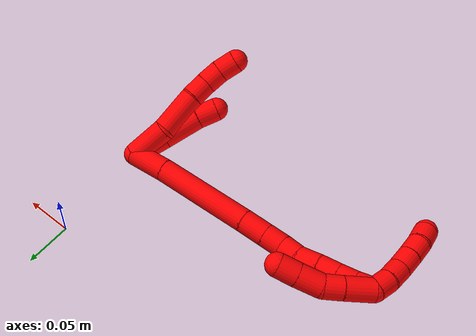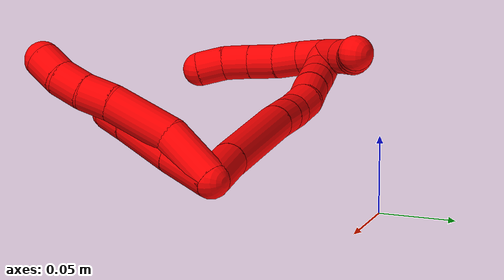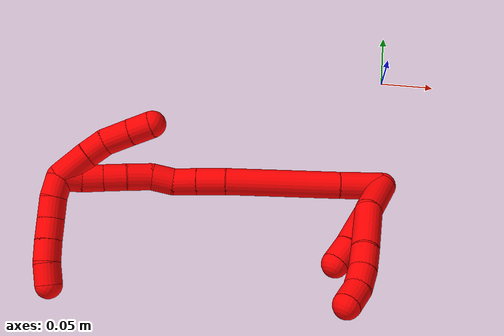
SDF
<sdf version="1.7">
 <world name="default">
  <model name="2">
   <static>0</static>
   <link name="2">
    <collision name="collision-cylinder-e_1_2_8">
     <pose>-8.3e-05 0.0117 0.017714 -0.58372 -0.003916 0.001176</pose>
     <geometry><cylinder><radius>0.0125</radius><length>0.042458</length></cylinder></geometry>
     <surface>
      <friction><ode><mu>1.16</mu><mu2>1.16</mu2><slip1>0</slip1><slip2>0</slip2></ode></friction>
      <contact><ode><kp>1e+06</kp><kd>1</kd><max_vel>0</max_vel><min_depth>0.001</min_depth></ode></contact>
     </surface>
    </collision>
    <visual name="visual-cylinder-e_1_2_8">
     <pose>-8.3e-05 0.0117 0.017714 -0.58372 -0.003916 0.001176</pose>
     <geometry><cylinder><radius>0.0125</radius><length>0.042458</length></cylinder></geometry>
     <material><ambient>1 0 0 1</ambient></material>
    </visual>
    <collision name="collision-cylinder-e_2_8_9">
     <pose>0.006099 0.032173 0.055275 -0.416208 0.281089 -0.059731</pose>
     <geometry><cylinder><radius>0.0125</radius><length>0.045172</length></cylinder></geometry>
     <surface>
      <friction><ode><mu>1.16</mu><mu2>1.16</mu2><slip1>0</slip1><slip2>0</slip2></ode></friction>
      <contact><ode><kp>1e+06</kp><kd>1</kd><max_vel>0</max_vel><min_depth>0.001</min_depth></ode></contact>
     </surface>
    </collision>
    <visual name="visual-cylinder-e_2_8_9">
     <pose>0.006099 0.032173 0.055275 -0.416208 0.281089 -0.059731</pose>
     <geometry><cylinder><radius>0.0125</radius><length>0.045172</length></cylinder></geometry>
     <material><ambient>1 0 0 1</ambient></material>
    </visual>
    <collision name="collision-cylinder-e_3_9_10">
     <pose>0.015244 0.043643 0.085024 -0.265947 0.273539 -0.036815</pose>
     <geometry><cylinder><radius>0.0125</radius><length>0.02132</length></cylinder></geometry>
     <surface>
      <friction><ode><mu>1.16</mu><mu2>1.16</mu2><slip1>0</slip1><slip2>0</slip2></ode></friction>
      <contact><ode><kp>1e+06</kp><kd>1</kd><max_vel>0</max_vel><min_depth>0.001</min_depth></ode></contact>
     </surface>
    </collision>
    <visual name="visual-cylinder-e_3_9_10">
     <pose>0.015244 0.043643 0.085024 -0.265947 0.273539 -0.036815</pose>
     <geometry><cylinder><radius>0.0125</radius><length>0.02132</length></cylinder></geometry>
     <material><ambient>1 0 0 1</ambient></material>
    </visual>
    <collision name="collision-cylinder-e_4_10_11">
     <pose>0.019493 0.049963 0.104359 -0.36669 0.134668 -0.025008</pose>
     <geometry><cylinder><radius>0.0125</radius><length>0.020392</length></cylinder></geometry>
     <surface>
      <friction><ode><mu>1.16</mu><mu2>1.16</mu2><slip1>0</slip1><slip2>0</slip2></ode></friction>
      <contact><ode><kp>1e+06</kp><kd>1</kd><max_vel>0</max_vel><min_depth>0.001</min_depth></ode></contact>
     </surface>
    </collision>
    <visual name="visual-cylinder-e_4_10_11">
     <pose>0.019493 0.049963 0.104359 -0.36669 0.134668 -0.025008</pose>
     <geometry><cylinder><radius>0.0125</radius><length>0.020392</length></cylinder></geometry>
     <material><ambient>1 0 0 1</ambient></material>
    </visual>
    <collision name="collision-cylinder-e_5_11_6">
     <pose>0.019875 0.058198 0.12298 -0.465196 -0.095683 0.022682</pose>
     <geometry><cylinder><radius>0.0125</radius><length>0.020658</length></cylinder></geometry>
     <surface>
      <friction><ode><mu>1.16</mu><mu2>1.16</mu2><slip1>0</slip1><slip2>0</slip2></ode></friction>
      <contact><ode><kp>1e+06</kp><kd>1</kd><max_vel>0</max_vel><min_depth>0.001</min_depth></ode></contact>
     </surface>
    </collision>
    <visual name="visual-cylinder-e_5_11_6">
     <pose>0.019875 0.058198 0.12298 -0.465196 -0.095683 0.022682</pose>
     <geometry><cylinder><radius>0.0125</radius><length>0.020658</length></cylinder></geometry>
     <material><ambient>1 0 0 1</ambient></material>
    </visual>
    <collision name="collision-cylinder-e_1_2_12">
     <pose>-0.000697 0.005271 0.017167 -0.297934 -0.038781 0.005821</pose>
     <geometry><cylinder><radius>0.0125</radius><length>0.035943</length></cylinder></geometry>
     <surface>
      <friction><ode><mu>1.16</mu><mu2>1.16</mu2><slip1>0</slip1><slip2>0</slip2></ode></friction>
      <contact><ode><kp>1e+06</kp><kd>1</kd><max_vel>0</max_vel><min_depth>0.001</min_depth></ode></contact>
     </surface>
    </collision>
    <visual name="visual-cylinder-e_1_2_12">
     <pose>-0.000697 0.005271 0.017167 -0.297934 -0.038781 0.005821</pose>
     <geometry><cylinder><radius>0.0125</radius><length>0.035943</length></cylinder></geometry>
     <material><ambient>1 0 0 1</ambient></material>
    </visual>
    <collision name="collision-cylinder-e_2_12_13">
     <pose>-0.002527 0.017598 0.054017 -0.344181 -0.054176 0.009419</pose>
     <geometry><cylinder><radius>0.0125</radius><length>0.041882</length></cylinder></geometry>
     <surface>
      <friction><ode><mu>1.16</mu><mu2>1.16</mu2><slip1>0</slip1><slip2>0</slip2></ode></friction>
      <contact><ode><kp>1e+06</kp><kd>1</kd><max_vel>0</max_vel><min_depth>0.001</min_depth></ode></contact>
     </surface>
    </collision>
    <visual name="visual-cylinder-e_2_12_13">
     <pose>-0.002527 0.017598 0.054017 -0.344181 -0.054176 0.009419</pose>
     <geometry><cylinder><radius>0.0125</radius><length>0.041882</length></cylinder></geometry>
     <material><ambient>1 0 0 1</ambient></material>
    </visual>
    <collision name="collision-cylinder-e_3_13_5">
     <pose>-0.005388 0.027463 0.084287 -0.259398 -0.156338 0.020432</pose>
     <geometry><cylinder><radius>0.0125</radius><length>0.022176</length></cylinder></geometry>
     <surface>
      <friction><ode><mu>1.16</mu><mu2>1.16</mu2><slip1>0</slip1><slip2>0</slip2></ode></friction>
      <contact><ode><kp>1e+06</kp><kd>1</kd><max_vel>0</max_vel><min_depth>0.001</min_depth></ode></contact>
     </surface>
    </collision>
    <visual name="visual-cylinder-e_3_13_5">
     <pose>-0.005388 0.027463 0.084287 -0.259398 -0.156338 0.020432</pose>
     <geometry><cylinder><radius>0.0125</radius><length>0.022176</length></cylinder></geometry>
     <material><ambient>1 0 0 1</ambient></material>
    </visual>
    <collision name="collision-cylinder-e_1_2_14">
     <pose>-0.018083 0.002274 0.008449 -0.262916 -1.12016 0.165442</pose>
     <geometry><cylinder><radius>0.0125</radius><length>0.040177</length></cylinder></geometry>
     <surface>
      <friction><ode><mu>1.16</mu><mu2>1.16</mu2><slip1>0</slip1><slip2>0</slip2></ode></friction>
      <contact><ode><kp>1e+06</kp><kd>1</kd><max_vel>0</max_vel><min_depth>0.001</min_depth></ode></contact>
     </surface>
    </collision>
    <visual name="visual-cylinder-e_1_2_14">
     <pose>-0.018083 0.002274 0.008449 -0.262916 -1.12016 0.165442</pose>
     <geometry><cylinder><radius>0.0125</radius><length>0.040177</length></cylinder></geometry>
     <material><ambient>1 0 0 1</ambient></material>
    </visual>
    <collision name="collision-cylinder-e_2_14_15">
     <pose>-0.084476 0.008248 0.037621 -0.176706 -1.15985 0.115926</pose>
     <geometry><cylinder><radius>0.0125</radius><length>0.105394</length></cylinder></geometry>
     <surface>
      <friction><ode><mu>1.16</mu><mu2>1.16</mu2><slip1>0</slip1><slip2>0</slip2></ode></friction>
      <contact><ode><kp>1e+06</kp><kd>1</kd><max_vel>0</max_vel><min_depth>0.001</min_depth></ode></contact>
     </surface>
    </collision>
    <visual name="visual-cylinder-e_2_14_15">
     <pose>-0.084476 0.008248 0.037621 -0.176706 -1.15985 0.115926</pose>
     <geometry><cylinder><radius>0.0125</radius><length>0.105394</length></cylinder></geometry>
     <material><ambient>1 0 0 1</ambient></material>
    </visual>
    <collision name="collision-cylinder-e_3_15_16">
     <pose>-0.145138 0.012047 0.063849 -0.017745 -1.1515 0.011518</pose>
     <geometry><cylinder><radius>0.0125</radius><length>0.027048</length></cylinder></geometry>
     <surface>
      <friction><ode><mu>1.16</mu><mu2>1.16</mu2><slip1>0</slip1><slip2>0</slip2></ode></friction>
      <contact><ode><kp>1e+06</kp><kd>1</kd><max_vel>0</max_vel><min_depth>0.001</min_depth></ode></contact>
     </surface>
    </collision>
    <visual name="visual-cylinder-e_3_15_16">
     <pose>-0.145138 0.012047 0.063849 -0.017745 -1.1515 0.011518</pose>
     <geometry><cylinder><radius>0.0125</radius><length>0.027048</length></cylinder></geometry>
     <material><ambient>1 0 0 1</ambient></material>
    </visual>
    <collision name="collision-cylinder-e_4_16_17">
     <pose>-0.167402 0.01212 0.073854 0.005518 -1.14465 -0.003555</pose>
     <geometry><cylinder><radius>0.0125</radius><length>0.021771</length></cylinder></geometry>
     <surface>
      <friction><ode><mu>1.16</mu><mu2>1.16</mu2><slip1>0</slip1><slip2>0</slip2></ode></friction>
      <contact><ode><kp>1e+06</kp><kd>1</kd><max_vel>0</max_vel><min_depth>0.001</min_depth></ode></contact>
     </surface>
    </collision>
    <visual name="visual-cylinder-e_4_16_17">
     <pose>-0.167402 0.01212 0.073854 0.005518 -1.14465 -0.003555</pose>
     <geometry><cylinder><radius>0.0125</radius><length>0.021771</length></cylinder></geometry>
     <material><ambient>1 0 0 1</ambient></material>
    </visual>
    <collision name="collision-cylinder-e_5_17_18">
     <pose>-0.187278 0.01442 0.080906 -0.738722 -1.23723 0.537782</pose>
     <geometry><cylinder><radius>0.0125</radius><length>0.02109</length></cylinder></geometry>
     <surface>
      <friction><ode><mu>1.16</mu><mu2>1.16</mu2><slip1>0</slip1><slip2>0</slip2></ode></friction>
      <contact><ode><kp>1e+06</kp><kd>1</kd><max_vel>0</max_vel><min_depth>0.001</min_depth></ode></contact>
     </surface>
    </collision>
    <visual name="visual-cylinder-e_5_17_18">
     <pose>-0.187278 0.01442 0.080906 -0.738722 -1.23723 0.537782</pose>
     <geometry><cylinder><radius>0.0125</radius><length>0.02109</length></cylinder></geometry>
     <material><ambient>1 0 0 1</ambient></material>
    </visual>
    <collision name="collision-cylinder-e_6_18_19">
     <pose>-0.206999 0.019237 0.089056 -0.418979 -1.01008 0.234013</pose>
     <geometry><cylinder><radius>0.0125</radius><length>0.023043</length></cylinder></geometry>
     <surface>
      <friction><ode><mu>1.16</mu><mu2>1.16</mu2><slip1>0</slip1><slip2>0</slip2></ode></friction>
      <contact><ode><kp>1e+06</kp><kd>1</kd><max_vel>0</max_vel><min_depth>0.001</min_depth></ode></contact>
     </surface>
    </collision>
    <visual name="visual-cylinder-e_6_18_19">
     <pose>-0.206999 0.019237 0.089056 -0.418979 -1.01008 0.234013</pose>
     <geometry><cylinder><radius>0.0125</radius><length>0.023043</length></cylinder></geometry>
     <material><ambient>1 0 0 1</ambient></material>
    </visual>
    <collision name="collision-cylinder-e_7_19_20">
     <pose>-0.22593 0.023225 0.099707 -0.287645 -1.04933 0.167247</pose>
     <geometry><cylinder><radius>0.0125</radius><length>0.021161</length></cylinder></geometry>
     <surface>
      <friction><ode><mu>1.16</mu><mu2>1.16</mu2><slip1>0</slip1><slip2>0</slip2></ode></friction>
      <contact><ode><kp>1e+06</kp><kd>1</kd><max_vel>0</max_vel><min_depth>0.001</min_depth></ode></contact>
     </surface>
    </collision>
    <visual name="visual-cylinder-e_7_19_20">
     <pose>-0.22593 0.023225 0.099707 -0.287645 -1.04933 0.167247</pose>
     <geometry><cylinder><radius>0.0125</radius><length>0.021161</length></cylinder></geometry>
     <material><ambient>1 0 0 1</ambient></material>
    </visual>
    <collision name="collision-cylinder-e_8_20_21">
     <pose>-0.243767 0.026364 0.109743 -0.318707 -1.02623 0.18062</pose>
     <geometry><cylinder><radius>0.0125</radius><length>0.020256</length></cylinder></geometry>
     <surface>
      <friction><ode><mu>1.16</mu><mu2>1.16</mu2><slip1>0</slip1><slip2>0</slip2></ode></friction>
      <contact><ode><kp>1e+06</kp><kd>1</kd><max_vel>0</max_vel><min_depth>0.001</min_depth></ode></contact>
     </surface>
    </collision>
    <visual name="visual-cylinder-e_8_20_21">
     <pose>-0.243767 0.026364 0.109743 -0.318707 -1.02623 0.18062</pose>
     <geometry><cylinder><radius>0.0125</radius><length>0.020256</length></cylinder></geometry>
     <material><ambient>1 0 0 1</ambient></material>
    </visual>
    <collision name="collision-cylinder-e_9_21_1">
     <pose>-0.260692 0.031867 0.118905 -0.745646 -0.967861 0.405503</pose>
     <geometry><cylinder><radius>0.0125</radius><length>0.020061</length></cylinder></geometry>
     <surface>
      <friction><ode><mu>1.16</mu><mu2>1.16</mu2><slip1>0</slip1><slip2>0</slip2></ode></friction>
      <contact><ode><kp>1e+06</kp><kd>1</kd><max_vel>0</max_vel><min_depth>0.001</min_depth></ode></contact>
     </surface>
    </collision>
    <visual name="visual-cylinder-e_9_21_1">
     <pose>-0.260692 0.031867 0.118905 -0.745646 -0.967861 0.405503</pose>
     <geometry><cylinder><radius>0.0125</radius><length>0.020061</length></cylinder></geometry>
     <material><ambient>1 0 0 1</ambient></material>
    </visual>
    <collision name="collision-cylinder-e_1_1_22">
     <pose>-0.261566 0.038276 0.109091 -2.96132 0.479092 -2.43272</pose>
     <geometry><cylinder><radius>0.0125</radius><length>0.032053</length></cylinder></geometry>
     <surface>
      <friction><ode><mu>1.16</mu><mu2>1.16</mu2><slip1>0</slip1><slip2>0</slip2></ode></friction>
      <contact><ode><kp>1e+06</kp><kd>1</kd><max_vel>0</max_vel><min_depth>0.001</min_depth></ode></contact>
     </surface>
    </collision>
    <visual name="visual-cylinder-e_1_1_22">
     <pose>-0.261566 0.038276 0.109091 -2.96132 0.479092 -2.43272</pose>
     <geometry><cylinder><radius>0.0125</radius><length>0.032053</length></cylinder></geometry>
     <material><ambient>1 0 0 1</ambient></material>
    </visual>
    <collision name="collision-cylinder-e_2_22_23">
     <pose>-0.249025 0.042019 0.086501 -3.00373 0.535728 -2.64872</pose>
     <geometry><cylinder><radius>0.0125</radius><length>0.02019</length></cylinder></geometry>
     <surface>
      <friction><ode><mu>1.16</mu><mu2>1.16</mu2><slip1>0</slip1><slip2>0</slip2></ode></friction>
      <contact><ode><kp>1e+06</kp><kd>1</kd><max_vel>0</max_vel><min_depth>0.001</min_depth></ode></contact>
     </surface>
    </collision>
    <visual name="visual-cylinder-e_2_22_23">
     <pose>-0.249025 0.042019 0.086501 -3.00373 0.535728 -2.64872</pose>
     <geometry><cylinder><radius>0.0125</radius><length>0.02019</length></cylinder></geometry>
     <material><ambient>1 0 0 1</ambient></material>
    </visual>
    <collision name="collision-cylinder-e_3_23_24">
     <pose>-0.233997 0.046036 0.069467 -2.81859 0.837473 -2.43977</pose>
     <geometry><cylinder><radius>0.0125</radius><length>0.026582</length></cylinder></geometry>
     <surface>
      <friction><ode><mu>1.16</mu><mu2>1.16</mu2><slip1>0</slip1><slip2>0</slip2></ode></friction>
      <contact><ode><kp>1e+06</kp><kd>1</kd><max_vel>0</max_vel><min_depth>0.001</min_depth></ode></contact>
     </surface>
    </collision>
    <visual name="visual-cylinder-e_3_23_24">
     <pose>-0.233997 0.046036 0.069467 -2.81859 0.837473 -2.43977</pose>
     <geometry><cylinder><radius>0.0125</radius><length>0.026582</length></cylinder></geometry>
     <material><ambient>1 0 0 1</ambient></material>
    </visual>
    <collision name="collision-cylinder-e_4_24_4">
     <pose>-0.216116 0.051424 0.054595 -2.76234 0.857513 -2.34655</pose>
     <geometry><cylinder><radius>0.0125</radius><length>0.021175</length></cylinder></geometry>
     <surface>
      <friction><ode><mu>1.16</mu><mu2>1.16</mu2><slip1>0</slip1><slip2>0</slip2></ode></friction>
      <contact><ode><kp>1e+06</kp><kd>1</kd><max_vel>0</max_vel><min_depth>0.001</min_depth></ode></contact>
     </surface>
    </collision>
    <visual name="visual-cylinder-e_4_24_4">
     <pose>-0.216116 0.051424 0.054595 -2.76234 0.857513 -2.34655</pose>
     <geometry><cylinder><radius>0.0125</radius><length>0.021175</length></cylinder></geometry>
     <material><ambient>1 0 0 1</ambient></material>
    </visual>
    <collision name="collision-cylinder-e_1_1_25">
     <pose>-0.267363 0.034024 0.132808 0.173242 0.15979 0.013905</pose>
     <geometry><cylinder><radius>0.0125</radius><length>0.02</length></cylinder></geometry>
     <surface>
      <friction><ode><mu>1.16</mu><mu2>1.16</mu2><slip1>0</slip1><slip2>0</slip2></ode></friction>
      <contact><ode><kp>1e+06</kp><kd>1</kd><max_vel>0</max_vel><min_depth>0.001</min_depth></ode></contact>
     </surface>
    </collision>
    <visual name="visual-cylinder-e_1_1_25">
     <pose>-0.267363 0.034024 0.132808 0.173242 0.15979 0.013905</pose>
     <geometry><cylinder><radius>0.0125</radius><length>0.02</length></cylinder></geometry>
     <material><ambient>1 0 0 1</ambient></material>
    </visual>
    <collision name="collision-cylinder-e_2_25_26">
     <pose>-0.262542 0.030204 0.151757 0.225797 0.328839 0.037619</pose>
     <geometry><cylinder><radius>0.0125</radius><length>0.02</length></cylinder></geometry>
     <surface>
      <friction><ode><mu>1.16</mu><mu2>1.16</mu2><slip1>0</slip1><slip2>0</slip2></ode></friction>
      <contact><ode><kp>1e+06</kp><kd>1</kd><max_vel>0</max_vel><min_depth>0.001</min_depth></ode></contact>
     </surface>
    </collision>
    <visual name="visual-cylinder-e_2_25_26">
     <pose>-0.262542 0.030204 0.151757 0.225797 0.328839 0.037619</pose>
     <geometry><cylinder><radius>0.0125</radius><length>0.02</length></cylinder></geometry>
     <material><ambient>1 0 0 1</ambient></material>
    </visual>
    <collision name="collision-cylinder-e_3_26_27">
     <pose>-0.255657 0.027195 0.170246 0.095762 0.37418 0.018142</pose>
     <geometry><cylinder><radius>0.0125</radius><length>0.02</length></cylinder></geometry>
     <surface>
      <friction><ode><mu>1.16</mu><mu2>1.16</mu2><slip1>0</slip1><slip2>0</slip2></ode></friction>
      <contact><ode><kp>1e+06</kp><kd>1</kd><max_vel>0</max_vel><min_depth>0.001</min_depth></ode></contact>
     </surface>
    </collision>
    <visual name="visual-cylinder-e_3_26_27">
     <pose>-0.255657 0.027195 0.170246 0.095762 0.37418 0.018142</pose>
     <geometry><cylinder><radius>0.0125</radius><length>0.02</length></cylinder></geometry>
     <material><ambient>1 0 0 1</ambient></material>
    </visual>
    <collision name="collision-cylinder-e_4_27_28">
     <pose>-0.248009 0.025129 0.188604 0.128636 0.410819 0.026837</pose>
     <geometry><cylinder><radius>0.0125</radius><length>0.02</length></cylinder></geometry>
     <surface>
      <friction><ode><mu>1.16</mu><mu2>1.16</mu2><slip1>0</slip1><slip2>0</slip2></ode></friction>
      <contact><ode><kp>1e+06</kp><kd>1</kd><max_vel>0</max_vel><min_depth>0.001</min_depth></ode></contact>
     </surface>
    </collision>
    <visual name="visual-cylinder-e_4_27_28">
     <pose>-0.248009 0.025129 0.188604 0.128636 0.410819 0.026837</pose>
     <geometry><cylinder><radius>0.0125</radius><length>0.02</length></cylinder></geometry>
     <material><ambient>1 0 0 1</ambient></material>
    </visual>
    <collision name="collision-cylinder-e_5_28_3">
     <pose>-0.239164 0.021133 0.205974 0.328261 0.506441 0.085664</pose>
     <geometry><cylinder><radius>0.0125</radius><length>0.02</length></cylinder></geometry>
     <surface>
      <friction><ode><mu>1.16</mu><mu2>1.16</mu2><slip1>0</slip1><slip2>0</slip2></ode></friction>
      <contact><ode><kp>1e+06</kp><kd>1</kd><max_vel>0</max_vel><min_depth>0.001</min_depth></ode></contact>
     </surface>
    </collision>
    <visual name="visual-cylinder-e_5_28_3">
     <pose>-0.239164 0.021133 0.205974 0.328261 0.506441 0.085664</pose>
     <geometry><cylinder><radius>0.0125</radius><length>0.02</length></cylinder></geometry>
     <material><ambient>1 0 0 1</ambient></material>
    </visual>
    <collision name="collision-sphere-3">
     <pose>-0.234314 0.018314 0.214252 0 -0 0</pose>
     <geometry><sphere><radius>0.0125</radius></sphere></geometry>
     <surface>
      <friction><ode><mu>1.16</mu><mu2>1.16</mu2><slip1>0</slip1><slip2>0</slip2></ode></friction>
      <contact><ode><kp>1e+06</kp><kd>1</kd><max_vel>0</max_vel><min_depth>0.001</min_depth></ode></contact>
     </surface>
    </collision>
    <visual name="visual-sphere-3">
     <pose>-0.234314 0.018314 0.214252 0 -0 0</pose>
     <geometry><sphere><radius>0.0125</radius></sphere></geometry>
     <material><ambient>1 0 0 1</ambient></material>
    </visual>
    <collision name="collision-sphere-28">
     <pose>-0.244015 0.023953 0.197696 0 -0 0</pose>
     <geometry><sphere><radius>0.0125</radius></sphere></geometry>
     <surface>
      <friction><ode><mu>1.16</mu><mu2>1.16</mu2><slip1>0</slip1><slip2>0</slip2></ode></friction>
      <contact><ode><kp>1e+06</kp><kd>1</kd><max_vel>0</max_vel><min_depth>0.001</min_depth></ode></contact>
     </surface>
    </collision>
    <visual name="visual-sphere-28">
     <pose>-0.244015 0.023953 0.197696 0 -0 0</pose>
     <geometry><sphere><radius>0.0125</radius></sphere></geometry>
     <material><ambient>1 0 0 1</ambient></material>
    </visual>
    <collision name="collision-sphere-27">
     <pose>-0.252002 0.026305 0.179512 0 -0 0</pose>
     <geometry><sphere><radius>0.0125</radius></sphere></geometry>
     <surface>
      <friction><ode><mu>1.16</mu><mu2>1.16</mu2><slip1>0</slip1><slip2>0</slip2></ode></friction>
      <contact><ode><kp>1e+06</kp><kd>1</kd><max_vel>0</max_vel><min_depth>0.001</min_depth></ode></contact>
     </surface>
    </collision>
    <visual name="visual-sphere-27">
     <pose>-0.252002 0.026305 0.179512 0 -0 0</pose>
     <geometry><sphere><radius>0.0125</radius></sphere></geometry>
     <material><ambient>1 0 0 1</ambient></material>
    </visual>
    <collision name="collision-sphere-26">
     <pose>-0.259313 0.028085 0.160981 0 -0 0</pose>
     <geometry><sphere><radius>0.0125</radius></sphere></geometry>
     <surface>
      <friction><ode><mu>1.16</mu><mu2>1.16</mu2><slip1>0</slip1><slip2>0</slip2></ode></friction>
      <contact><ode><kp>1e+06</kp><kd>1</kd><max_vel>0</max_vel><min_depth>0.001</min_depth></ode></contact>
     </surface>
    </collision>
    <visual name="visual-sphere-26">
     <pose>-0.259313 0.028085 0.160981 0 -0 0</pose>
     <geometry><sphere><radius>0.0125</radius></sphere></geometry>
     <material><ambient>1 0 0 1</ambient></material>
    </visual>
    <collision name="collision-sphere-25">
     <pose>-0.265771 0.032322 0.142533 0 -0 0</pose>
     <geometry><sphere><radius>0.0125</radius></sphere></geometry>
     <surface>
      <friction><ode><mu>1.16</mu><mu2>1.16</mu2><slip1>0</slip1><slip2>0</slip2></ode></friction>
      <contact><ode><kp>1e+06</kp><kd>1</kd><max_vel>0</max_vel><min_depth>0.001</min_depth></ode></contact>
     </surface>
    </collision>
    <visual name="visual-sphere-25">
     <pose>-0.265771 0.032322 0.142533 0 -0 0</pose>
     <geometry><sphere><radius>0.0125</radius></sphere></geometry>
     <material><ambient>1 0 0 1</ambient></material>
    </visual>
    <collision name="collision-sphere-4">
     <pose>-0.20811 0.053989 0.04816 0 -0 0</pose>
     <geometry><sphere><radius>0.0125</radius></sphere></geometry>
     <surface>
      <friction><ode><mu>1.16</mu><mu2>1.16</mu2><slip1>0</slip1><slip2>0</slip2></ode></friction>
      <contact><ode><kp>1e+06</kp><kd>1</kd><max_vel>0</max_vel><min_depth>0.001</min_depth></ode></contact>
     </surface>
    </collision>
    <visual name="visual-sphere-4">
     <pose>-0.20811 0.053989 0.04816 0 -0 0</pose>
     <geometry><sphere><radius>0.0125</radius></sphere></geometry>
     <material><ambient>1 0 0 1</ambient></material>
    </visual>
    <collision name="collision-sphere-24">
     <pose>-0.224122 0.04886 0.061031 0 -0 0</pose>
     <geometry><sphere><radius>0.0125</radius></sphere></geometry>
     <surface>
      <friction><ode><mu>1.16</mu><mu2>1.16</mu2><slip1>0</slip1><slip2>0</slip2></ode></friction>
      <contact><ode><kp>1e+06</kp><kd>1</kd><max_vel>0</max_vel><min_depth>0.001</min_depth></ode></contact>
     </surface>
    </collision>
    <visual name="visual-sphere-24">
     <pose>-0.224122 0.04886 0.061031 0 -0 0</pose>
     <geometry><sphere><radius>0.0125</radius></sphere></geometry>
     <material><ambient>1 0 0 1</ambient></material>
    </visual>
    <collision name="collision-sphere-23">
     <pose>-0.243872 0.043212 0.077903 0 -0 0</pose>
     <geometry><sphere><radius>0.0125</radius></sphere></geometry>
     <surface>
      <friction><ode><mu>1.16</mu><mu2>1.16</mu2><slip1>0</slip1><slip2>0</slip2></ode></friction>
      <contact><ode><kp>1e+06</kp><kd>1</kd><max_vel>0</max_vel><min_depth>0.001</min_depth></ode></contact>
     </surface>
    </collision>
    <visual name="visual-sphere-23">
     <pose>-0.243872 0.043212 0.077903 0 -0 0</pose>
     <geometry><sphere><radius>0.0125</radius></sphere></geometry>
     <material><ambient>1 0 0 1</ambient></material>
    </visual>
    <collision name="collision-sphere-22">
     <pose>-0.254178 0.040826 0.0951 0 -0 0</pose>
     <geometry><sphere><radius>0.0125</radius></sphere></geometry>
     <surface>
      <friction><ode><mu>1.16</mu><mu2>1.16</mu2><slip1>0</slip1><slip2>0</slip2></ode></friction>
      <contact><ode><kp>1e+06</kp><kd>1</kd><max_vel>0</max_vel><min_depth>0.001</min_depth></ode></contact>
     </surface>
    </collision>
    <visual name="visual-sphere-22">
     <pose>-0.254178 0.040826 0.0951 0 -0 0</pose>
     <geometry><sphere><radius>0.0125</radius></sphere></geometry>
     <material><ambient>1 0 0 1</ambient></material>
    </visual>
    <collision name="collision-sphere-1">
     <pose>-0.268954 0.035726 0.123083 0 -0 0</pose>
     <geometry><sphere><radius>0.0125</radius></sphere></geometry>
     <surface>
      <friction><ode><mu>1.16</mu><mu2>1.16</mu2><slip1>0</slip1><slip2>0</slip2></ode></friction>
      <contact><ode><kp>1e+06</kp><kd>1</kd><max_vel>0</max_vel><min_depth>0.001</min_depth></ode></contact>
     </surface>
    </collision>
    <visual name="visual-sphere-1">
     <pose>-0.268954 0.035726 0.123083 0 -0 0</pose>
     <geometry><sphere><radius>0.0125</radius></sphere></geometry>
     <material><ambient>1 0 0 1</ambient></material>
    </visual>
    <collision name="collision-sphere-21">
     <pose>-0.25243 0.028008 0.114726 0 -0 0</pose>
     <geometry><sphere><radius>0.0125</radius></sphere></geometry>
     <surface>
      <friction><ode><mu>1.16</mu><mu2>1.16</mu2><slip1>0</slip1><slip2>0</slip2></ode></friction>
      <contact><ode><kp>1e+06</kp><kd>1</kd><max_vel>0</max_vel><min_depth>0.001</min_depth></ode></contact>
     </surface>
    </collision>
    <visual name="visual-sphere-21">
     <pose>-0.25243 0.028008 0.114726 0 -0 0</pose>
     <geometry><sphere><radius>0.0125</radius></sphere></geometry>
     <material><ambient>1 0 0 1</ambient></material>
    </visual>
    <collision name="collision-sphere-6">
     <pose>0.018888 0.062811 0.13217 0 -0 0</pose>
     <geometry><sphere><radius>0.0125</radius></sphere></geometry>
     <surface>
      <friction><ode><mu>1.16</mu><mu2>1.16</mu2><slip1>0</slip1><slip2>0</slip2></ode></friction>
      <contact><ode><kp>1e+06</kp><kd>1</kd><max_vel>0</max_vel><min_depth>0.001</min_depth></ode></contact>
     </surface>
    </collision>
    <visual name="visual-sphere-6">
     <pose>0.018888 0.062811 0.13217 0 -0 0</pose>
     <geometry><sphere><radius>0.0125</radius></sphere></geometry>
     <material><ambient>1 0 0 1</ambient></material>
    </visual>
    <collision name="collision-sphere-11">
     <pose>0.020862 0.053586 0.113791 0 -0 0</pose>
     <geometry><sphere><radius>0.0125</radius></sphere></geometry>
     <surface>
      <friction><ode><mu>1.16</mu><mu2>1.16</mu2><slip1>0</slip1><slip2>0</slip2></ode></friction>
      <contact><ode><kp>1e+06</kp><kd>1</kd><max_vel>0</max_vel><min_depth>0.001</min_depth></ode></contact>
     </surface>
    </collision>
    <visual name="visual-sphere-11">
     <pose>0.020862 0.053586 0.113791 0 -0 0</pose>
     <geometry><sphere><radius>0.0125</radius></sphere></geometry>
     <material><ambient>1 0 0 1</ambient></material>
    </visual>
    <collision name="collision-sphere-10">
     <pose>0.018124 0.046341 0.094927 0 -0 0</pose>
     <geometry><sphere><radius>0.0125</radius></sphere></geometry>
     <surface>
      <friction><ode><mu>1.16</mu><mu2>1.16</mu2><slip1>0</slip1><slip2>0</slip2></ode></friction>
      <contact><ode><kp>1e+06</kp><kd>1</kd><max_vel>0</max_vel><min_depth>0.001</min_depth></ode></contact>
     </surface>
    </collision>
    <visual name="visual-sphere-10">
     <pose>0.018124 0.046341 0.094927 0 -0 0</pose>
     <geometry><sphere><radius>0.0125</radius></sphere></geometry>
     <material><ambient>1 0 0 1</ambient></material>
    </visual>
    <collision name="collision-sphere-9">
     <pose>0.012365 0.040946 0.075122 0 -0 0</pose>
     <geometry><sphere><radius>0.0125</radius></sphere></geometry>
     <surface>
      <friction><ode><mu>1.16</mu><mu2>1.16</mu2><slip1>0</slip1><slip2>0</slip2></ode></friction>
      <contact><ode><kp>1e+06</kp><kd>1</kd><max_vel>0</max_vel><min_depth>0.001</min_depth></ode></contact>
     </surface>
    </collision>
    <visual name="visual-sphere-9">
     <pose>0.012365 0.040946 0.075122 0 -0 0</pose>
     <geometry><sphere><radius>0.0125</radius></sphere></geometry>
     <material><ambient>1 0 0 1</ambient></material>
    </visual>
    <collision name="collision-sphere-2">
     <geometry><sphere><radius>0.0125</radius></sphere></geometry>
     <surface>
      <friction><ode><mu>1.16</mu><mu2>1.16</mu2><slip1>0</slip1><slip2>0</slip2></ode></friction>
      <contact><ode><kp>1e+06</kp><kd>1</kd><max_vel>0</max_vel><min_depth>0.001</min_depth></ode></contact>
     </surface>
    </collision>
    <visual name="visual-sphere-2">
     <geometry><sphere><radius>0.0125</radius></sphere></geometry>
     <material><ambient>1 0 0 1</ambient></material>
    </visual>
    <collision name="collision-sphere-19">
     <pose>-0.216756 0.02173 0.094653 0 -0 0</pose>
     <geometry><sphere><radius>0.0125</radius></sphere></geometry>
     <surface>
      <friction><ode><mu>1.16</mu><mu2>1.16</mu2><slip1>0</slip1><slip2>0</slip2></ode></friction>
      <contact><ode><kp>1e+06</kp><kd>1</kd><max_vel>0</max_vel><min_depth>0.001</min_depth></ode></contact>
     </surface>
    </collision>
    <visual name="visual-sphere-19">
     <pose>-0.216756 0.02173 0.094653 0 -0 0</pose>
     <geometry><sphere><radius>0.0125</radius></sphere></geometry>
     <material><ambient>1 0 0 1</ambient></material>
    </visual>
    <collision name="collision-sphere-8">
     <pose>-0.000166 0.0234 0.035428 0 -0 0</pose>
     <geometry><sphere><radius>0.0125</radius></sphere></geometry>
     <surface>
      <friction><ode><mu>1.16</mu><mu2>1.16</mu2><slip1>0</slip1><slip2>0</slip2></ode></friction>
      <contact><ode><kp>1e+06</kp><kd>1</kd><max_vel>0</max_vel><min_depth>0.001</min_depth></ode></contact>
     </surface>
    </collision>
    <visual name="visual-sphere-8">
     <pose>-0.000166 0.0234 0.035428 0 -0 0</pose>
     <geometry><sphere><radius>0.0125</radius></sphere></geometry>
     <material><ambient>1 0 0 1</ambient></material>
    </visual>
    <collision name="collision-sphere-12">
     <pose>-0.001394 0.010543 0.034333 0 -0 0</pose>
     <geometry><sphere><radius>0.0125</radius></sphere></geometry>
     <surface>
      <friction><ode><mu>1.16</mu><mu2>1.16</mu2><slip1>0</slip1><slip2>0</slip2></ode></friction>
      <contact><ode><kp>1e+06</kp><kd>1</kd><max_vel>0</max_vel><min_depth>0.001</min_depth></ode></contact>
     </surface>
    </collision>
    <visual name="visual-sphere-12">
     <pose>-0.001394 0.010543 0.034333 0 -0 0</pose>
     <geometry><sphere><radius>0.0125</radius></sphere></geometry>
     <material><ambient>1 0 0 1</ambient></material>
    </visual>
    <collision name="collision-sphere-13">
     <pose>-0.003661 0.024654 0.073701 0 -0 0</pose>
     <geometry><sphere><radius>0.0125</radius></sphere></geometry>
     <surface>
      <friction><ode><mu>1.16</mu><mu2>1.16</mu2><slip1>0</slip1><slip2>0</slip2></ode></friction>
      <contact><ode><kp>1e+06</kp><kd>1</kd><max_vel>0</max_vel><min_depth>0.001</min_depth></ode></contact>
     </surface>
    </collision>
    <visual name="visual-sphere-13">
     <pose>-0.003661 0.024654 0.073701 0 -0 0</pose>
     <geometry><sphere><radius>0.0125</radius></sphere></geometry>
     <material><ambient>1 0 0 1</ambient></material>
    </visual>
    <collision name="collision-sphere-5">
     <pose>-0.007114 0.030273 0.094873 0 -0 0</pose>
     <geometry><sphere><radius>0.0125</radius></sphere></geometry>
     <surface>
      <friction><ode><mu>1.16</mu><mu2>1.16</mu2><slip1>0</slip1><slip2>0</slip2></ode></friction>
      <contact><ode><kp>1e+06</kp><kd>1</kd><max_vel>0</max_vel><min_depth>0.001</min_depth></ode></contact>
     </surface>
    </collision>
    <visual name="visual-sphere-5">
     <pose>-0.007114 0.030273 0.094873 0 -0 0</pose>
     <geometry><sphere><radius>0.0125</radius></sphere></geometry>
     <material><ambient>1 0 0 1</ambient></material>
    </visual>
    <collision name="collision-sphere-14">
     <pose>-0.036167 0.004548 0.016898 0 -0 0</pose>
     <geometry><sphere><radius>0.0125</radius></sphere></geometry>
     <surface>
      <friction><ode><mu>1.16</mu><mu2>1.16</mu2><slip1>0</slip1><slip2>0</slip2></ode></friction>
      <contact><ode><kp>1e+06</kp><kd>1</kd><max_vel>0</max_vel><min_depth>0.001</min_depth></ode></contact>
     </surface>
    </collision>
    <visual name="visual-sphere-14">
     <pose>-0.036167 0.004548 0.016898 0 -0 0</pose>
     <geometry><sphere><radius>0.0125</radius></sphere></geometry>
     <material><ambient>1 0 0 1</ambient></material>
    </visual>
    <collision name="collision-sphere-15">
     <pose>-0.132786 0.011949 0.058344 0 -0 0</pose>
     <geometry><sphere><radius>0.0125</radius></sphere></geometry>
     <surface>
      <friction><ode><mu>1.16</mu><mu2>1.16</mu2><slip1>0</slip1><slip2>0</slip2></ode></friction>
      <contact><ode><kp>1e+06</kp><kd>1</kd><max_vel>0</max_vel><min_depth>0.001</min_depth></ode></contact>
     </surface>
    </collision>
    <visual name="visual-sphere-15">
     <pose>-0.132786 0.011949 0.058344 0 -0 0</pose>
     <geometry><sphere><radius>0.0125</radius></sphere></geometry>
     <material><ambient>1 0 0 1</ambient></material>
    </visual>
    <collision name="collision-sphere-16">
     <pose>-0.15749 0.012144 0.069354 0 -0 0</pose>
     <geometry><sphere><radius>0.0125</radius></sphere></geometry>
     <surface>
      <friction><ode><mu>1.16</mu><mu2>1.16</mu2><slip1>0</slip1><slip2>0</slip2></ode></friction>
      <contact><ode><kp>1e+06</kp><kd>1</kd><max_vel>0</max_vel><min_depth>0.001</min_depth></ode></contact>
     </surface>
    </collision>
    <visual name="visual-sphere-16">
     <pose>-0.15749 0.012144 0.069354 0 -0 0</pose>
     <geometry><sphere><radius>0.0125</radius></sphere></geometry>
     <material><ambient>1 0 0 1</ambient></material>
    </visual>
    <collision name="collision-sphere-17">
     <pose>-0.177314 0.012095 0.078353 0 -0 0</pose>
     <geometry><sphere><radius>0.0125</radius></sphere></geometry>
     <surface>
      <friction><ode><mu>1.16</mu><mu2>1.16</mu2><slip1>0</slip1><slip2>0</slip2></ode></friction>
      <contact><ode><kp>1e+06</kp><kd>1</kd><max_vel>0</max_vel><min_depth>0.001</min_depth></ode></contact>
     </surface>
    </collision>
    <visual name="visual-sphere-17">
     <pose>-0.177314 0.012095 0.078353 0 -0 0</pose>
     <geometry><sphere><radius>0.0125</radius></sphere></geometry>
     <material><ambient>1 0 0 1</ambient></material>
    </visual>
    <collision name="collision-sphere-18">
     <pose>-0.197241 0.016744 0.083458 0 -0 0</pose>
     <geometry><sphere><radius>0.0125</radius></sphere></geometry>
     <surface>
      <friction><ode><mu>1.16</mu><mu2>1.16</mu2><slip1>0</slip1><slip2>0</slip2></ode></friction>
      <contact><ode><kp>1e+06</kp><kd>1</kd><max_vel>0</max_vel><min_depth>0.001</min_depth></ode></contact>
     </surface>
    </collision>
    <visual name="visual-sphere-18">
     <pose>-0.197241 0.016744 0.083458 0 -0 0</pose>
     <geometry><sphere><radius>0.0125</radius></sphere></geometry>
     <material><ambient>1 0 0 1</ambient></material>
    </visual>
    <collision name="collision-sphere-20">
     <pose>-0.235104 0.02472 0.104761 0 -0 0</pose>
     <geometry><sphere><radius>0.0125</radius></sphere></geometry>
     <surface>
      <friction><ode><mu>1.16</mu><mu2>1.16</mu2><slip1>0</slip1><slip2>0</slip2></ode></friction>
      <contact><ode><kp>1e+06</kp><kd>1</kd><max_vel>0</max_vel><min_depth>0.001</min_depth></ode></contact>
     </surface>
    </collision>
    <visual name="visual-sphere-20">
     <pose>-0.235104 0.02472 0.104761 0 -0 0</pose>
     <geometry><sphere><radius>0.0125</radius></sphere></geometry>
     <material><ambient>1 0 0 1</ambient></material>
    </visual>
    <inertial>
     <pose>-0.119168 0.023655 0.077104 0 -0 0</pose>
     <mass>0.75</mass>
     <inertia>
      <ixx>7.5e-05</ixx>
      <ixy>0</ixy>
      <ixz>0</ixz>
      <iyy>0.000181</iyy>
      <iyz>0</iyz>
      <izz>0.000104</izz>
     </inertia>
    </inertial>
   </link>
   <pose>0.003689 -0.111128 0.012384 1.58936 -0.064912 -0.350666</pose>
  </model>
 </world>
</sdf>
